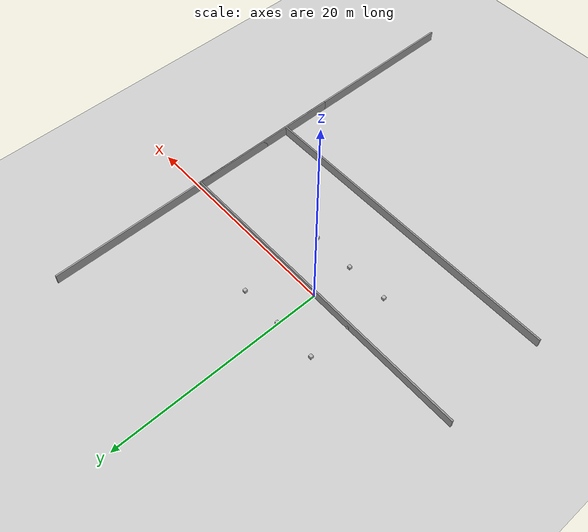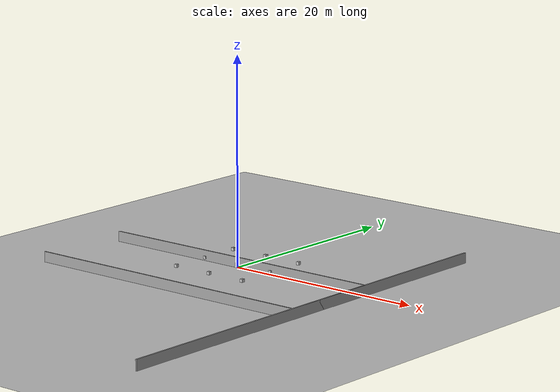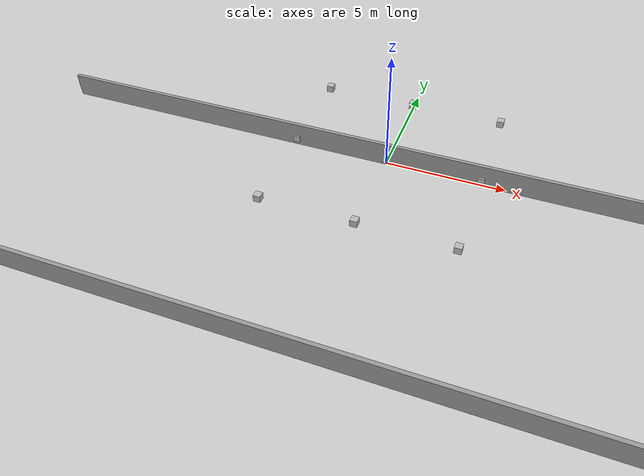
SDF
<?xml version="1.0" ?>
<sdf version="1.6">
  <world name="default">

    <!-- Include ground plane and sun -->
    <include>
      <uri>model://ground_plane</uri>
    </include>
    <include>
      <uri>model://sun</uri>
    </include>

    <!-- Scene settings -->
    <scene>
      <shadows>false</shadows>
    </scene>

    <!-- GUI and Camera settings -->
    <gui fullscreen="0">
      <camera name="user_camera">
        <pose frame="">0.319654 -0.235002 9.29441 0 1.5138 0.009599</pose>
        <view_controller>orbit</view_controller>
        <projection_type>perspective</projection_type>
      </camera>
    </gui>

    <!-- Physics settings from old file -->
    <physics type="ode">
      <real_time_update_rate>1000.0</real_time_update_rate>
      <max_step_size>0.001</max_step_size>
      <real_time_factor>1</real_time_factor>
      <ode>
        <solver>
          <type>quick</type>
          <iters>150</iters>
          <precon_iters>0</precon_iters>
          <sor>1.400000</sor>
          <use_dynamic_moi_rescaling>1</use_dynamic_moi_rescaling>
        </solver>
        <constraints>
          <cfm>0.00001</cfm>
          <erp>0.2</erp>
          <contact_max_correcting_vel>2000.000000</contact_max_correcting_vel>
          <contact_surface_layer>0.01000</contact_surface_layer>
        </constraints>
      </ode>
    </physics>

    <!-- Main model named "turtlebot3_world" including the empty room with dynamic obstacles -->
    <model name="turtlebot3_world">
      <!-- Include empty room -->
      <include>
        <uri>model://empty_room</uri>
      </include>

      <!-- Dynamic obstacles within the empty room -->
      <model name="DynamicObstacle1">
        <pose>-4 4 0.15 0 0 0</pose>
        <include>
          <uri>model://dynamic_obstacle</uri>
        </include>
      </model>
      <model name="DynamicObstacle2">
        <pose>-4 0 0.15 0 0 0</pose>
        <include>
          <uri>model://dynamic_obstacle</uri>
        </include>
      </model>
      <model name="DynamicObstacle3">
        <pose>-4 -4 0.15 0 0 0</pose>
        <include>
          <uri>model://dynamic_obstacle</uri>
        </include>
      </model>
      <model name="DynamicObstacle4">
        <pose>0 4 0.15 0 0 0</pose>
        <include>
          <uri>model://dynamic_obstacle</uri>
        </include>
      </model>
      <model name="DynamicObstacle5">
        <pose>0 0 0.15 0 0 0</pose>
        <include>
          <uri>model://dynamic_obstacle</uri>
        </include>
      </model>
      <model name="DynamicObstacle6">
        <pose>0 -4 0.15 0 0 0</pose>
        <include>
          <uri>model://dynamic_obstacle</uri>
        </include>
      </model>
      <model name="DynamicObstacle7">
        <pose>4 4 0.15 0 0 0</pose>
        <include>
          <uri>model://dynamic_obstacle</uri>
        </include>
      </model>
      <model name="DynamicObstacle8">
        <pose>4 0 0.15 0 0 0</pose>
        <include>
          <uri>model://dynamic_obstacle</uri>
        </include>
      </model>
      <model name="DynamicObstacle9">
        <pose>4 -4 0.15 0 0 0</pose>
        <include>
          <uri>model://dynamic_obstacle</uri>
        </include>
      </model>
    </model>

  </world>
</sdf>

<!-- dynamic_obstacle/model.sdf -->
<sdf version="1.6">
    <model name="DynamicObstacle">
      <pose>0 0 0.15 0 0 0</pose>
      <link name="link">
	<gravity>1</gravity>
        <inertial>
	  <inertia>
	    <ixx>0.17</ixx>
            <ixy>0.00</ixy>
            <ixz>0.00</ixz>
            <iyy>0.17</iyy>
            <iyz>0.00</iyz>
            <izz>0.17</izz>
          </inertia>
          <mass>100</mass>
        </inertial>
        <kinematic>false</kinematic>
        <collision name="collision">
          <max_contacts>0</max_contacts>
          <geometry>
            <box>
              <size>0.3 0.3 0.3</size>
            </box>
          </geometry>
	  <surface>
            <friction>
              <ode>
                <mu>0.0</mu>
                <mu2>0.0</mu2>
              </ode>
            </friction>
            <bounce>
              <restitution_coefficient>0.0</restitution_coefficient>
              <threshold>0.0</threshold>
      	  </bounce>
	  <contact>
            <ode>
              <kp>2000000000</kp>
	      <kd>1</kd>
              <max_vel>2</max_vel>
              <min_depth>0.00</min_depth>
            </ode>
          </contact>
          </surface>
        </collision>
        <visual name="visual">
          <geometry>
            <box>
              <size>0.3 0.3 0.3</size>
            </box>
          </geometry>
        </visual>
      </link>
      <plugin name="random" filename="libRandomVelocityPlugin.so">
        <link>link</link>
        <initial_velocity>0 1 0</initial_velocity>
        <velocity_factor>0.9</velocity_factor>
        <update_period>5</update_period>
        <min_z>-5</min_z>
        <max_z>0</max_z>
      </plugin>
    </model>
</sdf>

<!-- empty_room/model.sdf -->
<sdf version='1.6'>
  <model name='EmptyRoom'>
    <pose frame=''>0.0 0.0 0.0 0.0 0.0 0.0</pose>
    <link name='Wall_1'>
      <collision name='Wall_1_Collision'>
        <geometry>
          <box>
            <size>30 0.15 1</size>
          </box>
        </geometry>
        <pose frame=''>0 0 0.5 0 -0 0</pose>
      </collision>
      <visual name='Wall_1_Visual'>
        <pose frame=''>0 0 0.5 0 -0 0</pose>
        <geometry>
          <box>
            <size>30 0.15 1</size>
          </box>
        </geometry>
        <material>
          <script>
            <uri>file://media/materials/scripts/gazebo.material</uri>
            <name>Gazebo/Grey</name>
          </script>
          <ambient>1 1 1 1</ambient>
        </material>
        <meta>
          <layer>0</layer>
        </meta>
      </visual>
      <pose frame=''>15 0 0 0 -0 -1.5708</pose>
    </link>
    <link name='Wall_2'>
      <collision name='Wall_2_Collision'>
        <geometry>
          <box>
            <size>30 0.15 1</size>
          </box>
        </geometry>
        <pose frame=''>0 0 0.5 0 -0 0</pose>
      </collision>
      <visual name='Wall_2_Visual'>
        <pose frame=''>0 0 0.5 0 -0 0</pose>
        <geometry>
          <box>
            <size>30 0.15 1</size>
          </box>
        </geometry>
        <material>
          <script>
            <uri>file://media/materials/scripts/gazebo.material</uri>
            <name>Gazebo/Grey</name>
          </script>
          <ambient>1 1 1 1</ambient>
        </material>
        <meta>
          <layer>0</layer>
        </meta>
      </visual>
      <pose frame=''>-0 0 0 0 -0 0</pose>
    </link>
    <link name='Wall_3'>
      <collision name='Wall_3_Collision'>
        <geometry>
          <box>
            <size>30 0.15 1</size>
          </box>
        </geometry>
        <pose frame=''>0 -15 0.5 0 -0 0</pose>
      </collision>
      <visual name='Wall_3_Visual'>
        <pose frame=''>0 -15 0.5 0 -0 0</pose>
        <geometry>
          <box>
            <size>30 0.15 1</size>
          </box>
        </geometry>
        <material>
          <script>
            <uri>file://media/materials/scripts/gazebo.material</uri>
            <name>Gazebo/Grey</name>
          </script>
          <ambient>1 1 1 1</ambient>
        </material>
        <meta>
          <layer>0</layer>
        </meta>
      </visual>
      <pose frame=''>0 -15 0 0 -0 1.5708</pose>
    </link>
    <link name='Wall_4'>
      <collision name='Wall_4_Collision'>
        <geometry>
          <box>
            <size>0 0.15 1</size>
          </box>
        </geometry>
        <pose frame=''>0 15 0.5 0 -0 0</pose>
      </collision>
      <visual name='Wall_4_Visual'>
        <pose frame=''>0 15 0.5 0 -0 0</pose>
        <geometry>
          <box>
            <size>30 0.15 1</size>
          </box>
        </geometry>
        <material>
          <script>
            <uri>file://media/materials/scripts/gazebo.material</uri>
            <name>Gazebo/Grey</name>
          </script>
          <ambient>1 1 1 1</ambient>
        </material>
        <meta>
          <layer>0</layer>
        </meta>
      </visual>
      <pose frame=''>-0 4.925 0 0 -0 3.14159</pose>
    </link>
    <static>1</static>
  </model>
</sdf>
